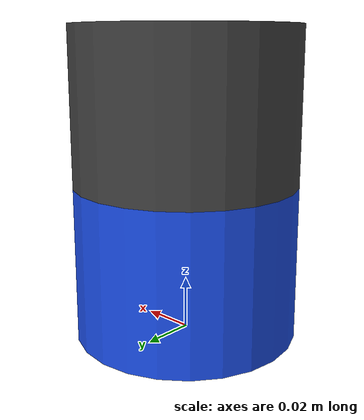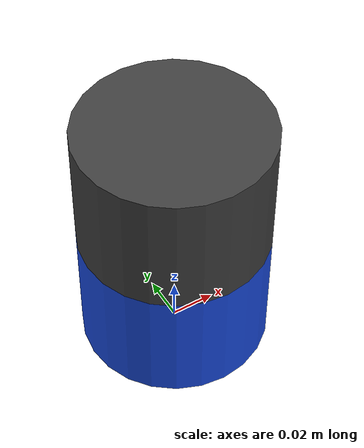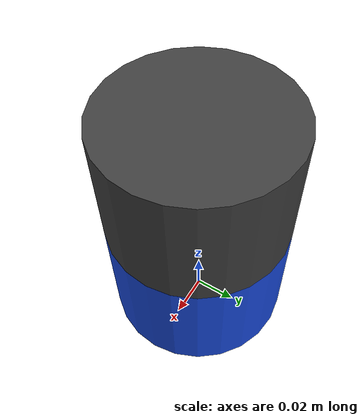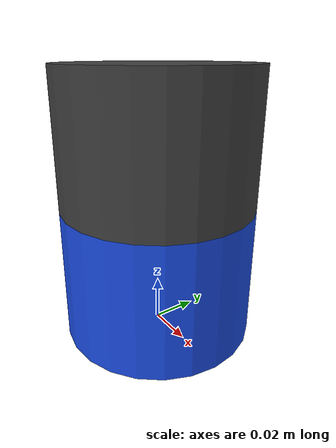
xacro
<?xml version="1.0"?>
<robot name="SF45B_lidar">
  <!-- BASE LINK (Cylindar) -->
  <link name="base">
    <inertial>
      <origin xyz="0 0 0.029335" rpy="0 0 0"/>
      <mass value="1.2"/>
      <inertia ixx="0.001087473" ixy="0" ixz="0"
               iyy="0.001087473" iyz="0"
               izz="0.001092437"/>
    </inertial>

    <collision name="base_collision">
      <origin xyz="0 0 0.029335" rpy="0 0 0"/>
      <geometry>
        <cylinder radius="0.04267" length="0.05867"/>
      </geometry>
    </collision>

    <visual name="base_visual">
      <origin xyz="0 0 0.029335" rpy="0 0 0"/>
      <geometry>
        <cylinder radius="0.04267" length="0.05867"/>
      </geometry>
      <material name="Blue">
        <color rgba="0.1 0.3 0.9 1"/>
      </material>
    </visual>
  </link>

  <!-- TOP LINK (Cylindar) -->
  <!-- Enable Sensors Engine (Ignition/Gazebo Sim) -->
  <link name="top">
    <inertial>
      <origin xyz="0 0 0" rpy="0 0 0"/>
      <mass value="0.1"/>
      <inertia ixx="0.000090623" ixy="0" ixz="0"
               iyy="0.000090623" iyz="0"
               izz="0.000091036"/>
    </inertial>

    <collision name="top_collision">
      <origin xyz="0 0 0" rpy="0 0 0"/>
      <geometry>
        <cylinder radius="0.04267" length="0.05867"/>
      </geometry>
    </collision>

    <visual name="top_visual">
      <origin xyz="0 0 0" rpy="0 0 0"/>
      <geometry>
        <cylinder radius="0.04267" length="0.05867"/>
      </geometry>
      <material name="DarkGray">
        <color rgba="0.25 0.25 0.25 1"/>
      </material>
    </visual>
  </link>

  <!-- REVOLUTE JOINT (Continuous Spin) -->
  <joint name="joint" type="continuous">
    <origin xyz="0 0 0.088005" rpy="0 0 0"/>
    <parent link="base"/>
    <child link="top"/>
    <axis xyz="0 0 1"/>
    <limit effort="10" velocity="6.28"/>
  </joint>

  <!-- Gazebo Sim GPU LiDAR Sensor (attached to "top") -->
  <gazebo>
    <plugin filename="gz-sim-sensors-system" name="gz::sim::systems::Sensors">
        <render_engine>ogre2</render_engine>
    </plugin>
  </gazebo>
  <gazebo reference="top">
    <sensor name="gpu_lidar_sensor" type="gpu_lidar">
      <pose relative_to="top">0 0 0 0 0 0</pose>

      <visualize>1</visualize>
      <always_on>1</always_on>
      <update_rate>10</update_rate>

      <!-- gz transport topic -->
      <topic>scan</topic>

      <lidar>
        <scan>
          <horizontal>
            <!-- 360 deg sweep -->
            <samples>720</samples>
            <resolution>1</resolution>
            <min_angle>-3.14159265359</min_angle>
            <max_angle> 3.14159265359</max_angle>
          </horizontal>

          <vertical>
            <!-- 32 channels (HDL-32-ish), using YOUR vertical FOV numbers -->
            <samples>32</samples>
            <resolution>1</resolution>
            <min_angle>-0.53529248</min_angle>
            <max_angle> 0.18622663</max_angle>
          </vertical>
        </scan>

        <range>
          <min>0.05</min>
          <max>70</max>
          <resolution>0.02</resolution>
        </range>

        <noise>
          <type>gaussian</type>
          <mean>0.0</mean>
          <stddev>0.01</stddev>
        </noise>
      </lidar>
    </sensor>
  </gazebo>

</robot>
